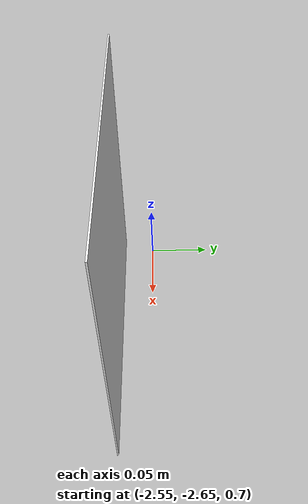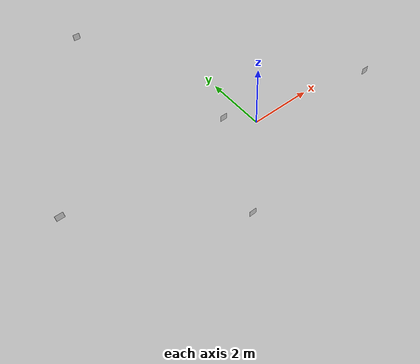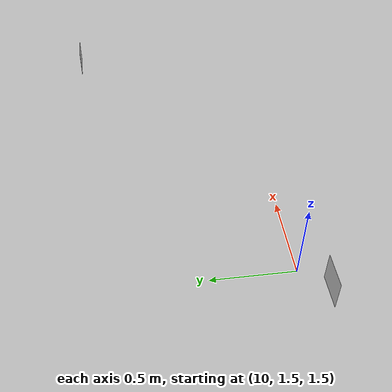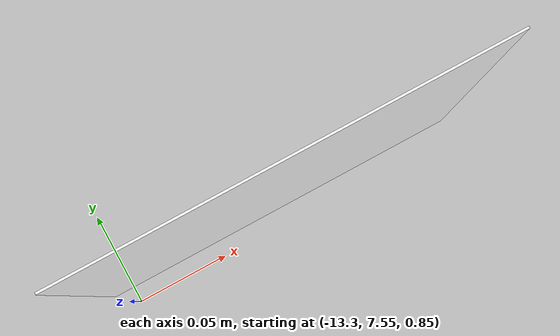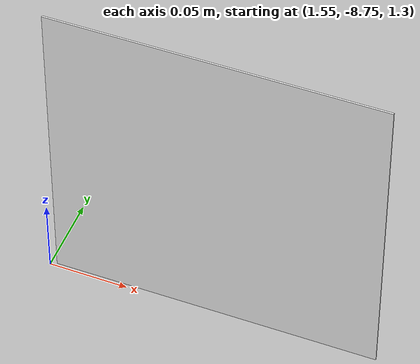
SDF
<sdf version="1.7">
 <world name="marsyard">
  <gravity>0 0 -9.81</gravity>
  <physics name="dart_physics" type="ignored">
   <max_step_size>0.003</max_step_size>
   <real_time_update_rate>333</real_time_update_rate>
   <real_time_factor>1.0</real_time_factor>
  </physics>
  <plugin filename="gz-sim-physics-system" name="gz::sim::systems::Physics"/>
  <plugin filename="gz-sim-user-commands-system" name="gz::sim::systems::UserCommands"/>
  <plugin filename="gz-sim-scene-broadcaster-system" name="gz::sim::systems::SceneBroadcaster"/>
  <plugin filename="gz-sim-contact-system" name="gz::sim::systems::Contact"/>
  <scene>
   <ambient>0.95 0.95 0.95 1</ambient>
   <background>0.70 0.70 0.70 1</background>
   <shadows>false</shadows>
  </scene>
  <light type="directional" name="sun">
   <cast_shadows>false</cast_shadows>
   <pose>0 0 30 0 0 0</pose>
   <diffuse>1 1 1 1</diffuse>
   <specular>0.15 0.15 0.15 1</specular>
   <direction>-0.35 0.1 -0.93</direction>
  </light>
  <model name="ArUco_51">
   <static>true</static>
   <pose>-12.8626 -1.6754 0.7429 0.0000 0.0000 0.0000</pose>
   <include><uri>model://aruco_1</uri></include>
  </model>
  <model name="ArUco_52">
   <static>true</static>
   <pose>-6.9112 -10.5555 0.2000 0.0000 0.0000 0.0000</pose>
   <include><uri>model://aruco_2</uri></include>
  </model>
  <model name="ArUco_53">
   <static>true</static>
   <pose>-7.7269 -3.7522 1.0725 0.0000 0.0000 0.0000</pose>
   <include><uri>model://aruco_3</uri></include>
  </model>
  <model name="ArUco_54">
   <static>true</static>
   <pose>-2.4448 -2.6740 0.8188 0.0000 0.0000 0.0000</pose>
   <include><uri>model://aruco_4</uri></include>
  </model>
  <model name="ArUco_55">
   <static>true</static>
   <pose>1.6623 -8.7646 1.4218 0.0000 0.0000 0.0000</pose>
   <include><uri>model://aruco_5</uri></include>
  </model>
  <model name="ArUco_56">
   <static>true</static>
   <pose>7.8746 -8.3014 0.9358 0.0000 0.0000 0.0000</pose>
   <include><uri>model://aruco_6</uri></include>
  </model>
  <model name="ArUco_57">
   <static>true</static>
   <pose>11.7097 -3.2808 1.0574 0.0000 0.0000 0.0000</pose>
   <include><uri>model://aruco_7</uri></include>
  </model>
  <model name="ArUco_58">
   <static>true</static>
   <pose>12.3320 2.6813 1.4401 0.0000 0.0000 0.0000</pose>
   <include><uri>model://aruco_8</uri></include>
  </model>
  <model name="ArUco_59">
   <static>true</static>
   <pose>9.8693 1.3461 1.5639 0.0000 0.0000 0.0000</pose>
   <include><uri>model://aruco_9</uri></include>
  </model>
  <model name="ArUco_60">
   <static>true</static>
   <pose>2.6570 -1.4837 1.5374 0.0000 0.0000 0.0000</pose>
   <include><uri>model://aruco_10</uri></include>
  </model>
  <model name="ArUco_61">
   <static>true</static>
   <pose>-1.0969 0.1368 0.8388 0.0000 0.0000 0.0000</pose>
   <include><uri>model://aruco_11</uri></include>
  </model>
  <model name="ArUco_62">
   <static>true</static>
   <pose>-2.7377 5.3769 1.2709 0.0000 0.0000 0.0000</pose>
   <include><uri>model://aruco_12</uri></include>
  </model>
  <model name="ArUco_63">
   <static>true</static>
   <pose>-5.9985 -0.3173 1.3591 0.0000 0.0000 0.0000</pose>
   <include><uri>model://aruco_13</uri></include>
  </model>
  <model name="ArUco_64">
   <static>true</static>
   <pose>-7.9646 6.9120 1.0548 0.0000 0.0000 0.0000</pose>
   <include><uri>model://aruco_14</uri></include>
  </model>
  <model name="ArUco_65">
   <static>true</static>
   <pose>-13.2124 7.5601 0.9365 0.0000 0.0000 0.0000</pose>
   <include><uri>model://aruco_15</uri></include>
  </model>
 </world>
</sdf>

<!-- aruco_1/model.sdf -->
<sdf version="1.9">
  <model name="aruco_1">
    <static>true</static>
    <link name="link"><inertial><mass>1.0</mass><inertia><ixx>0.1</ixx><ixy>0</ixy><ixz>0</ixz><iyy>0.1</iyy><iyz>0</iyz><izz>0.1</izz></inertia></inertial>
      <visual name="visual">
        <pose>0 0 0 0 1.5708 0</pose>
        <geometry>
          <box>
            <size>0.20 0.001 0.20</size>
          </box>
        </geometry>
        <material>
          <ambient>1 1 1 1</ambient>
          <diffuse>1 1 1 1</diffuse>
          <pbr>
            <metal>
              <albedo_map>model://aruco_1/materials/textures/aruco_1.png</albedo_map>
            </metal>
          </pbr>
        </material>
      </visual>
    </link>
  </model>
</sdf>

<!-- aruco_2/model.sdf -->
<sdf version="1.9">
  <model name="aruco_2">
    <static>true</static>
    <link name="link"><inertial><mass>1.0</mass><inertia><ixx>0.1</ixx><ixy>0</ixy><ixz>0</ixz><iyy>0.1</iyy><iyz>0</iyz><izz>0.1</izz></inertia></inertial>
      <visual name="visual">
        <pose>0 0 0 0 1.5708 0</pose>
        <geometry>
          <box>
            <size>0.20 0.001 0.20</size>
          </box>
        </geometry>
        <material>
          <ambient>1 1 1 1</ambient>
          <diffuse>1 1 1 1</diffuse>
          <pbr>
            <metal>
              <albedo_map>model://aruco_2/materials/textures/aruco_2.png</albedo_map>
            </metal>
          </pbr>
        </material>
      </visual>
    </link>
  </model>
</sdf>

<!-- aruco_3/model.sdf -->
<sdf version="1.9">
  <model name="aruco_3">
    <static>true</static>
    <link name="link"><inertial><mass>1.0</mass><inertia><ixx>0.1</ixx><ixy>0</ixy><ixz>0</ixz><iyy>0.1</iyy><iyz>0</iyz><izz>0.1</izz></inertia></inertial>
      <visual name="visual">
        <pose>0 0 0 0 1.5708 0</pose>
        <geometry>
          <box>
            <size>0.20 0.001 0.20</size>
          </box>
        </geometry>
        <material>
          <ambient>1 1 1 1</ambient>
          <diffuse>1 1 1 1</diffuse>
          <pbr>
            <metal>
              <albedo_map>model://aruco_3/materials/textures/aruco_3.png</albedo_map>
            </metal>
          </pbr>
        </material>
      </visual>
    </link>
  </model>
</sdf>

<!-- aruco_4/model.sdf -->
<sdf version="1.9">
  <model name="aruco_4">
    <static>true</static>
    <link name="link"><inertial><mass>1.0</mass><inertia><ixx>0.1</ixx><ixy>0</ixy><ixz>0</ixz><iyy>0.1</iyy><iyz>0</iyz><izz>0.1</izz></inertia></inertial>
      <visual name="visual">
        <pose>0 0 0 0 1.5708 0</pose>
        <geometry>
          <box>
            <size>0.20 0.001 0.20</size>
          </box>
        </geometry>
        <material>
          <ambient>1 1 1 1</ambient>
          <diffuse>1 1 1 1</diffuse>
          <pbr>
            <metal>
              <albedo_map>model://aruco_4/materials/textures/aruco_4.png</albedo_map>
            </metal>
          </pbr>
        </material>
      </visual>
    </link>
  </model>
</sdf>

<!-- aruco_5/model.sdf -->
<sdf version="1.9">
  <model name="aruco_5">
    <static>true</static>
    <link name="link"><inertial><mass>1.0</mass><inertia><ixx>0.1</ixx><ixy>0</ixy><ixz>0</ixz><iyy>0.1</iyy><iyz>0</iyz><izz>0.1</izz></inertia></inertial>
      <visual name="visual">
        <pose>0 0 0 0 1.5708 0</pose>
        <geometry>
          <box>
            <size>0.20 0.001 0.20</size>
          </box>
        </geometry>
        <material>
          <ambient>1 1 1 1</ambient>
          <diffuse>1 1 1 1</diffuse>
          <pbr>
            <metal>
              <albedo_map>model://aruco_5/materials/textures/aruco_5.png</albedo_map>
            </metal>
          </pbr>
        </material>
      </visual>
    </link>
  </model>
</sdf>

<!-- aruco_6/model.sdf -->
<sdf version="1.9">
  <model name="aruco_6">
    <static>true</static>
    <link name="link"><inertial><mass>1.0</mass><inertia><ixx>0.1</ixx><ixy>0</ixy><ixz>0</ixz><iyy>0.1</iyy><iyz>0</iyz><izz>0.1</izz></inertia></inertial>
      <visual name="visual">
        <pose>0 0 0 0 1.5708 0</pose>
        <geometry>
          <box>
            <size>0.20 0.001 0.20</size>
          </box>
        </geometry>
        <material>
          <ambient>1 1 1 1</ambient>
          <diffuse>1 1 1 1</diffuse>
          <pbr>
            <metal>
              <albedo_map>model://aruco_6/materials/textures/aruco_6.png</albedo_map>
            </metal>
          </pbr>
        </material>
      </visual>
    </link>
  </model>
</sdf>

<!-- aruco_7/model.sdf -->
<sdf version="1.9">
  <model name="aruco_7">
    <static>true</static>
    <link name="link"><inertial><mass>1.0</mass><inertia><ixx>0.1</ixx><ixy>0</ixy><ixz>0</ixz><iyy>0.1</iyy><iyz>0</iyz><izz>0.1</izz></inertia></inertial>
      <visual name="visual">
        <pose>0 0 0 0 1.5708 0</pose>
        <geometry>
          <box>
            <size>0.20 0.001 0.20</size>
          </box>
        </geometry>
        <material>
          <ambient>1 1 1 1</ambient>
          <diffuse>1 1 1 1</diffuse>
          <pbr>
            <metal>
              <albedo_map>model://aruco_7/materials/textures/aruco_7.png</albedo_map>
            </metal>
          </pbr>
        </material>
      </visual>
    </link>
  </model>
</sdf>

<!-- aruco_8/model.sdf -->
<sdf version="1.9">
  <model name="aruco_8">
    <static>true</static>
    <link name="link"><inertial><mass>1.0</mass><inertia><ixx>0.1</ixx><ixy>0</ixy><ixz>0</ixz><iyy>0.1</iyy><iyz>0</iyz><izz>0.1</izz></inertia></inertial>
      <visual name="visual">
        <pose>0 0 0 0 1.5708 0</pose>
        <geometry>
          <box>
            <size>0.20 0.001 0.20</size>
          </box>
        </geometry>
        <material>
          <ambient>1 1 1 1</ambient>
          <diffuse>1 1 1 1</diffuse>
          <pbr>
            <metal>
              <albedo_map>model://aruco_8/materials/textures/aruco_8.png</albedo_map>
            </metal>
          </pbr>
        </material>
      </visual>
    </link>
  </model>
</sdf>

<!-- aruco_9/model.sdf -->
<sdf version="1.9">
  <model name="aruco_9">
    <static>true</static>
    <link name="link"><inertial><mass>1.0</mass><inertia><ixx>0.1</ixx><ixy>0</ixy><ixz>0</ixz><iyy>0.1</iyy><iyz>0</iyz><izz>0.1</izz></inertia></inertial>
      <visual name="visual">
        <pose>0 0 0 0 1.5708 0</pose>
        <geometry>
          <box>
            <size>0.20 0.001 0.20</size>
          </box>
        </geometry>
        <material>
          <ambient>1 1 1 1</ambient>
          <diffuse>1 1 1 1</diffuse>
          <pbr>
            <metal>
              <albedo_map>model://aruco_9/materials/textures/aruco_9.png</albedo_map>
            </metal>
          </pbr>
        </material>
      </visual>
    </link>
  </model>
</sdf>

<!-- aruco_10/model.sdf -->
<sdf version="1.9">
  <model name="aruco_10">
    <static>true</static>
    <link name="link"><inertial><mass>1.0</mass><inertia><ixx>0.1</ixx><ixy>0</ixy><ixz>0</ixz><iyy>0.1</iyy><iyz>0</iyz><izz>0.1</izz></inertia></inertial>
      <visual name="visual">
        <pose>0 0 0 0 1.5708 0</pose>
        <geometry>
          <box>
            <size>0.20 0.001 0.20</size>
          </box>
        </geometry>
        <material>
          <ambient>1 1 1 1</ambient>
          <diffuse>1 1 1 1</diffuse>
          <pbr>
            <metal>
              <albedo_map>model://aruco_10/materials/textures/aruco_10.png</albedo_map>
            </metal>
          </pbr>
        </material>
      </visual>
    </link>
  </model>
</sdf>

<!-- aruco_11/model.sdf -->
<sdf version="1.9">
  <model name="aruco_11">
    <static>true</static>
    <link name="link"><inertial><mass>1.0</mass><inertia><ixx>0.1</ixx><ixy>0</ixy><ixz>0</ixz><iyy>0.1</iyy><iyz>0</iyz><izz>0.1</izz></inertia></inertial>
      <visual name="visual">
        <pose>0 0 0 0 1.5708 0</pose>
        <geometry>
          <box>
            <size>0.20 0.001 0.20</size>
          </box>
        </geometry>
        <material>
          <ambient>1 1 1 1</ambient>
          <diffuse>1 1 1 1</diffuse>
          <pbr>
            <metal>
              <albedo_map>model://aruco_11/materials/textures/aruco_11.png</albedo_map>
            </metal>
          </pbr>
        </material>
      </visual>
    </link>
  </model>
</sdf>

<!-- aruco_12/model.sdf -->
<sdf version="1.9">
  <model name="aruco_12">
    <static>true</static>
    <link name="link"><inertial><mass>1.0</mass><inertia><ixx>0.1</ixx><ixy>0</ixy><ixz>0</ixz><iyy>0.1</iyy><iyz>0</iyz><izz>0.1</izz></inertia></inertial>
      <visual name="visual">
        <pose>0 0 0 0 1.5708 0</pose>
        <geometry>
          <box>
            <size>0.20 0.001 0.20</size>
          </box>
        </geometry>
        <material>
          <ambient>1 1 1 1</ambient>
          <diffuse>1 1 1 1</diffuse>
          <pbr>
            <metal>
              <albedo_map>model://aruco_12/materials/textures/aruco_12.png</albedo_map>
            </metal>
          </pbr>
        </material>
      </visual>
    </link>
  </model>
</sdf>

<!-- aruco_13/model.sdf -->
<sdf version="1.9">
  <model name="aruco_13">
    <static>true</static>
    <link name="link"><inertial><mass>1.0</mass><inertia><ixx>0.1</ixx><ixy>0</ixy><ixz>0</ixz><iyy>0.1</iyy><iyz>0</iyz><izz>0.1</izz></inertia></inertial>
      <visual name="visual">
        <pose>0 0 0 0 1.5708 0</pose>
        <geometry>
          <box>
            <size>0.20 0.001 0.20</size>
          </box>
        </geometry>
        <material>
          <ambient>1 1 1 1</ambient>
          <diffuse>1 1 1 1</diffuse>
          <pbr>
            <metal>
              <albedo_map>model://aruco_13/materials/textures/aruco_13.png</albedo_map>
            </metal>
          </pbr>
        </material>
      </visual>
    </link>
  </model>
</sdf>

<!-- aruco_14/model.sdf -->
<sdf version="1.9">
  <model name="aruco_14">
    <static>true</static>
    <link name="link"><inertial><mass>1.0</mass><inertia><ixx>0.1</ixx><ixy>0</ixy><ixz>0</ixz><iyy>0.1</iyy><iyz>0</iyz><izz>0.1</izz></inertia></inertial>
      <visual name="visual">
        <pose>0 0 0 0 1.5708 0</pose>
        <geometry>
          <box>
            <size>0.20 0.001 0.20</size>
          </box>
        </geometry>
        <material>
          <ambient>1 1 1 1</ambient>
          <diffuse>1 1 1 1</diffuse>
          <pbr>
            <metal>
              <albedo_map>model://aruco_14/materials/textures/aruco_14.png</albedo_map>
            </metal>
          </pbr>
        </material>
      </visual>
    </link>
  </model>
</sdf>

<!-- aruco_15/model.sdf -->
<sdf version="1.9">
  <model name="aruco_15">
    <static>true</static>
    <link name="link"><inertial><mass>1.0</mass><inertia><ixx>0.1</ixx><ixy>0</ixy><ixz>0</ixz><iyy>0.1</iyy><iyz>0</iyz><izz>0.1</izz></inertia></inertial>
      <visual name="visual">
        <pose>0 0 0 0 1.5708 0</pose>
        <geometry>
          <box>
            <size>0.20 0.001 0.20</size>
          </box>
        </geometry>
        <material>
          <ambient>1 1 1 1</ambient>
          <diffuse>1 1 1 1</diffuse>
          <pbr>
            <metal>
              <albedo_map>model://aruco_15/materials/textures/aruco_15.png</albedo_map>
            </metal>
          </pbr>
        </material>
      </visual>
    </link>
  </model>
</sdf>
